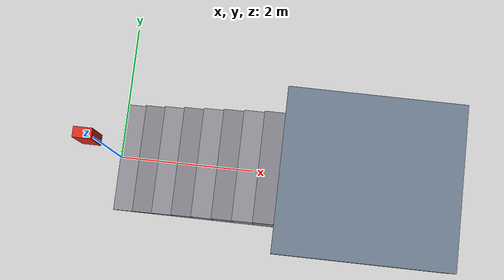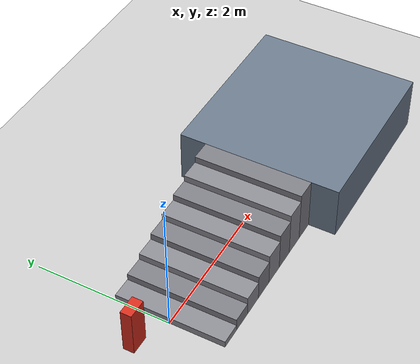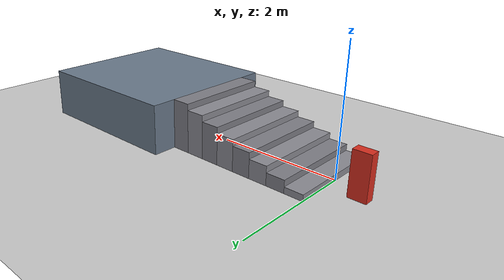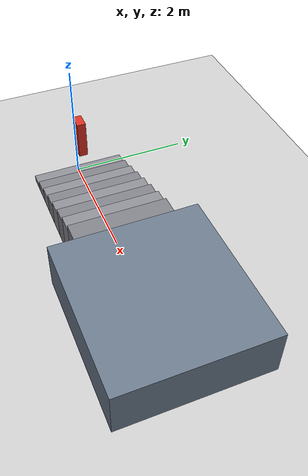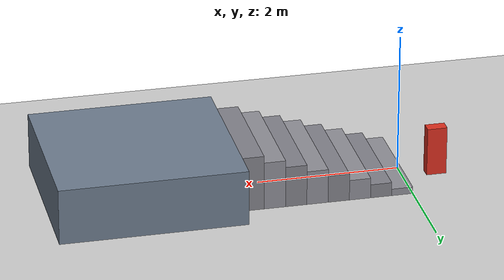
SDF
<?xml version="1.0"?>
<sdf version="1.9">
  <world name="tower">
    <physics name="physics" type="ignored">
      <max_step_size>0.001</max_step_size>
      <real_time_factor>0.5</real_time_factor>
    </physics>
    <gravity>0 0 -9.81</gravity>
    <plugin filename="gz-sim-physics-system" name="gz::sim::systems::Physics"/>
    <plugin filename="gz-sim-user-commands-system" name="gz::sim::systems::UserCommands"/>
    <plugin filename="gz-sim-scene-broadcaster-system" name="gz::sim::systems::SceneBroadcaster"/>
    <light name="sun" type="directional">
      <pose>0 0 10 0 0 0</pose>
      <diffuse>0.8 0.8 0.8 1</diffuse>
      <direction>-0.5 0.1 -0.9</direction>
      <cast_shadows>true</cast_shadows>
    </light>
    <model name="ground">
      <static>true</static>
      <link name="ground">
        <collision name="collision"><geometry><plane><normal>0 0 1</normal><size>30 30</size></plane></geometry></collision>
        <visual name="visual"><geometry><plane><normal>0 0 1</normal><size>30 30</size></plane></geometry></visual>
      </link>
    </model>

    <!-- Eight 0.10 m risers with 0.30 m treads, sized for the GO2 stair policy. -->
    <model name="scan_staircase">
      <static>true</static>
      <link name="stairs">
        <collision name="step_1"><pose>0.15 0 0.05 0 0 0</pose><geometry><box><size>0.30 1.60 0.10</size></box></geometry></collision>
        <visual name="visual_step_1"><pose>0.15 0 0.05 0 0 0</pose><geometry><box><size>0.30 1.60 0.10</size></box></geometry><material><diffuse>0.55 0.55 0.58 1</diffuse></material></visual>
        <collision name="step_2"><pose>0.45 0 0.10 0 0 0</pose><geometry><box><size>0.30 1.60 0.20</size></box></geometry></collision>
        <visual name="visual_step_2"><pose>0.45 0 0.10 0 0 0</pose><geometry><box><size>0.30 1.60 0.20</size></box></geometry><material><diffuse>0.50 0.50 0.53 1</diffuse></material></visual>
        <collision name="step_3"><pose>0.75 0 0.15 0 0 0</pose><geometry><box><size>0.30 1.60 0.30</size></box></geometry></collision>
        <visual name="visual_step_3"><pose>0.75 0 0.15 0 0 0</pose><geometry><box><size>0.30 1.60 0.30</size></box></geometry><material><diffuse>0.55 0.55 0.58 1</diffuse></material></visual>
        <collision name="step_4"><pose>1.05 0 0.20 0 0 0</pose><geometry><box><size>0.30 1.60 0.40</size></box></geometry></collision>
        <visual name="visual_step_4"><pose>1.05 0 0.20 0 0 0</pose><geometry><box><size>0.30 1.60 0.40</size></box></geometry><material><diffuse>0.50 0.50 0.53 1</diffuse></material></visual>
        <collision name="step_5"><pose>1.35 0 0.25 0 0 0</pose><geometry><box><size>0.30 1.60 0.50</size></box></geometry></collision>
        <visual name="visual_step_5"><pose>1.35 0 0.25 0 0 0</pose><geometry><box><size>0.30 1.60 0.50</size></box></geometry><material><diffuse>0.55 0.55 0.58 1</diffuse></material></visual>
        <collision name="step_6"><pose>1.65 0 0.30 0 0 0</pose><geometry><box><size>0.30 1.60 0.60</size></box></geometry></collision>
        <visual name="visual_step_6"><pose>1.65 0 0.30 0 0 0</pose><geometry><box><size>0.30 1.60 0.60</size></box></geometry><material><diffuse>0.50 0.50 0.53 1</diffuse></material></visual>
        <collision name="step_7"><pose>1.95 0 0.35 0 0 0</pose><geometry><box><size>0.30 1.60 0.70</size></box></geometry></collision>
        <visual name="visual_step_7"><pose>1.95 0 0.35 0 0 0</pose><geometry><box><size>0.30 1.60 0.70</size></box></geometry><material><diffuse>0.55 0.55 0.58 1</diffuse></material></visual>
        <collision name="step_8"><pose>2.25 0 0.40 0 0 0</pose><geometry><box><size>0.30 1.60 0.80</size></box></geometry></collision>
        <visual name="visual_step_8"><pose>2.25 0 0.40 0 0 0</pose><geometry><box><size>0.30 1.60 0.80</size></box></geometry><material><diffuse>0.50 0.50 0.53 1</diffuse></material></visual>
        <collision name="top_platform"><pose>3.70 0 0.40 0 0 0</pose><geometry><box><size>2.60 2.40 0.80</size></box></geometry></collision>
        <visual name="visual_top_platform"><pose>3.70 0 0.40 0 0 0</pose><geometry><box><size>2.60 2.40 0.80</size></box></geometry><material><diffuse>0.42 0.48 0.55 1</diffuse></material></visual>
      </link>
    </model>
    <model name="scan_approach_obstacle">
      <static>true</static>
      <pose>-0.48 0.22 0.35 0 0 0</pose>
      <link name="post">
        <collision name="collision">
          <geometry><box><size>0.28 0.16 0.70</size></box></geometry>
        </collision>
        <visual name="visual">
          <geometry><box><size>0.28 0.16 0.70</size></box></geometry>
          <material><diffuse>0.85 0.18 0.12 1</diffuse></material>
        </visual>
      </link>
    </model>
  </world>
</sdf>
